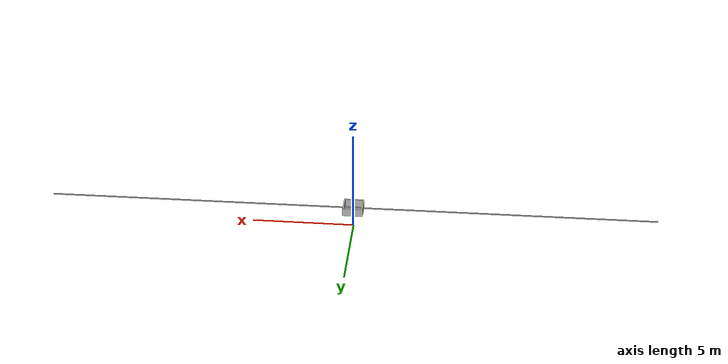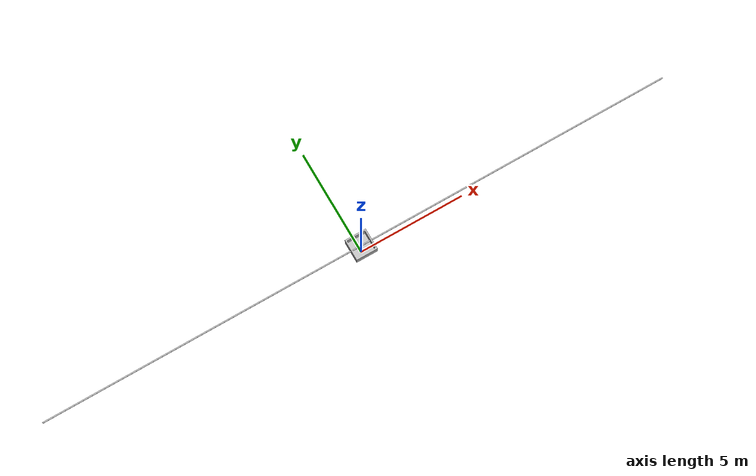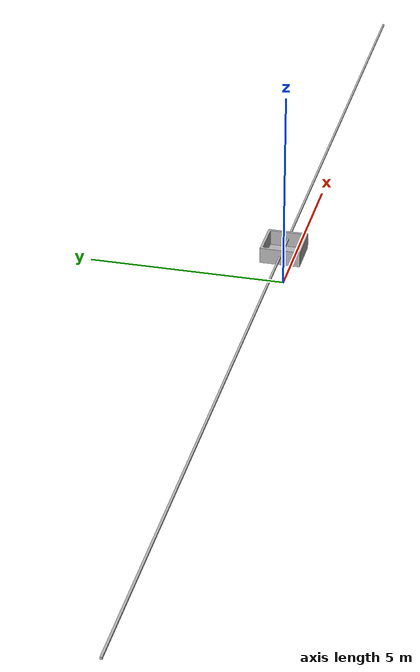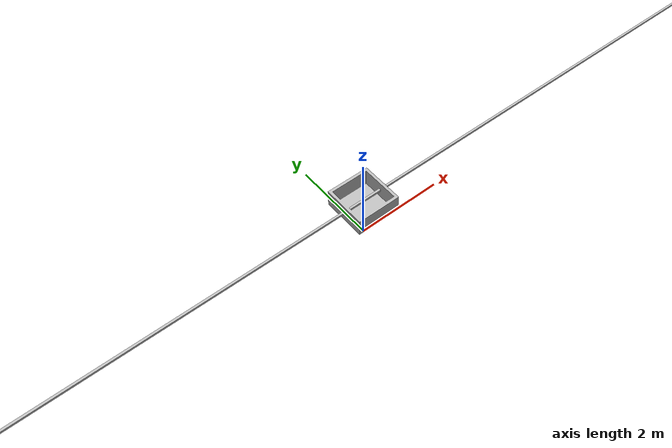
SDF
<sdf version='1.7'>
  <model name='cart'>
    <joint name='world_to_base' type='fixed'>
      <pose relative_to='__model__'>0 0 1 0 -0 0</pose>
      <parent>world</parent>
      <child>slideBar</child>
    </joint>
    <link name='slideBar'>
      <pose relative_to='world_to_base'>0 0 0 0 -0 0</pose>
      <inertial>
        <pose>0 0 0 0 -0 0</pose>
        <mass>100</mass>
        <inertia>
          <ixx>1</ixx>
          <ixy>0</ixy>
          <ixz>0</ixz>
          <iyy>1</iyy>
          <iyz>0</iyz>
          <izz>1</izz>
        </inertia>
      </inertial>
      <visual name='slideBar_visual'>
        <pose>0 0 0 0 -0 0</pose>
        <geometry>
          <box>
            <size>30 0.05 0.05</size>
          </box>
        </geometry>
      </visual>
    </link>
    <joint name='slider_to_cart' type='prismatic'>
      <pose relative_to='slideBar'>0 0 0 0 -0 0</pose>
      <parent>slideBar</parent>
      <child>cart</child>
      <axis>
        <xyz>1 0 0</xyz>
        <limit>
          <lower>-15</lower>
          <upper>15</upper>
          <effort>1000</effort>
          <velocity>30</velocity>
        </limit>
        <dynamics>
          <damping>0</damping>
          <friction>0</friction>
          <spring_reference>0</spring_reference>
          <spring_stiffness>0</spring_stiffness>
        </dynamics>
      </axis>
    </joint>
    <link name='cart'>
      <pose relative_to='slider_to_cart'>0 0 0 0 -0 0</pose>
      <inertial>
        <pose>0 0 0 0 -0 0</pose>
        <mass>1</mass>
        <inertia>
          <ixx>1</ixx>
          <ixy>0</ixy>
          <ixz>0</ixz>
          <iyy>1</iyy>
          <iyz>0</iyz>
          <izz>1</izz>
        </inertia>
      </inertial>
      <visual name='cart_visual'>
        <pose>0 0 0 0 -0 0</pose>
        <geometry>
          <mesh>
            <scale>1 1 1</scale>
            <uri>/home/mkhuthir/ws/install/bots/share/bots/meshes/cart/cart.stl</uri>
          </mesh>
        </geometry>
      </visual>
    </link>
  </model>
</sdf>
